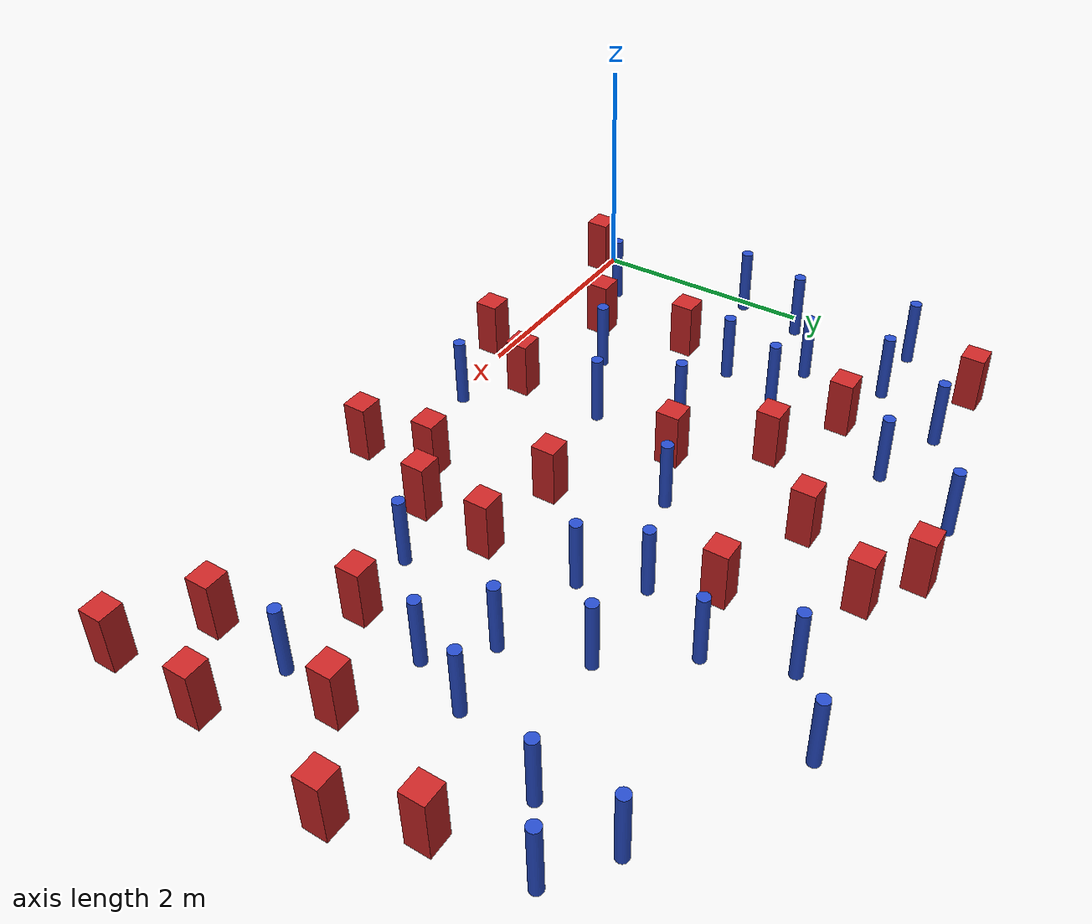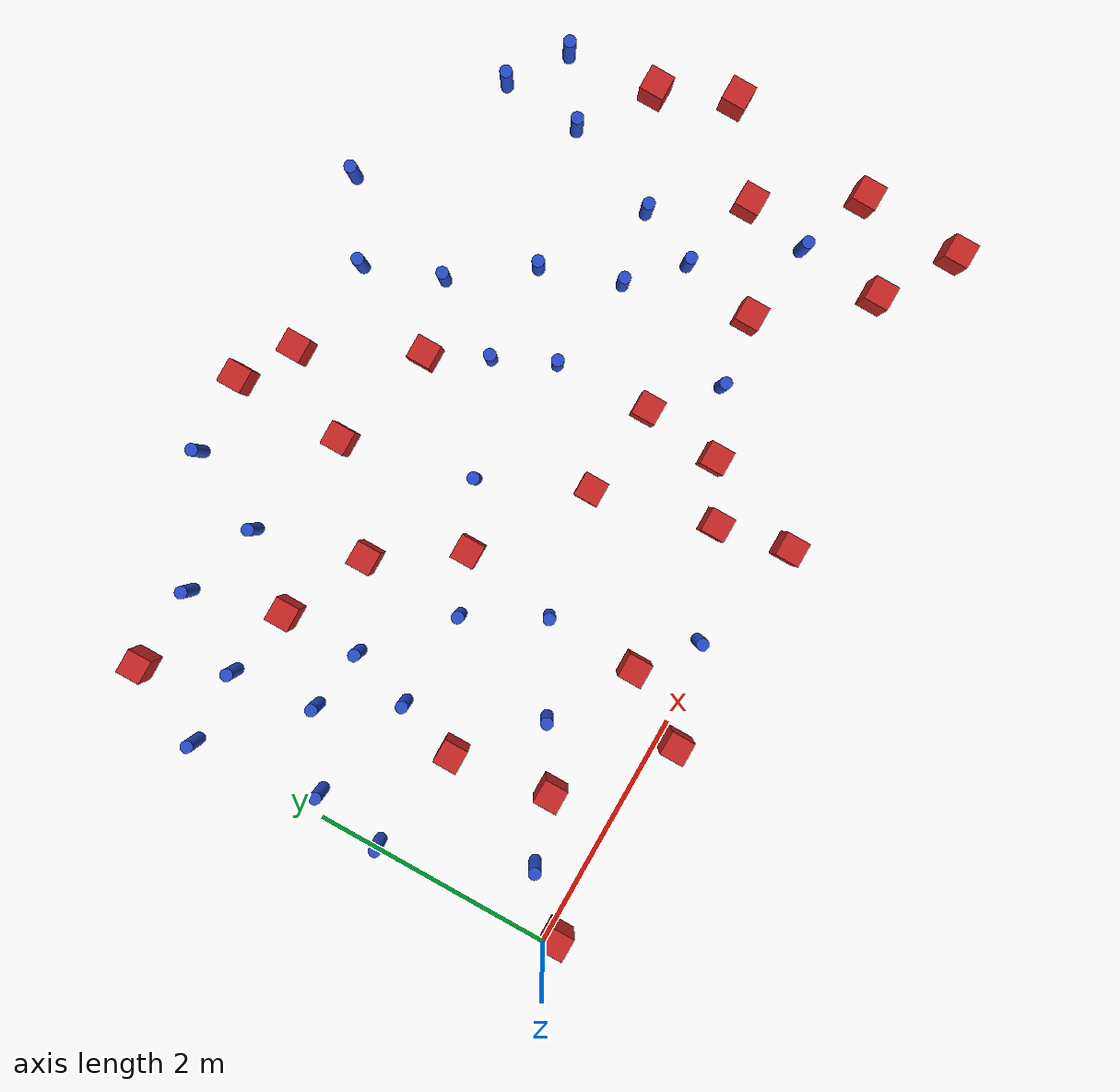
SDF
<sdf version="1.6">
 <model name="dense_35">
  <model name="pole_obstacle8">
   <static>true</static>
   <pose>5.74326832337 0.918242795768 -9.47619616065e-06 5.49618799737e-07 2.36310414061e-07 -1.550905348e-07</pose>
   <link name="link">
    <pose>0 0 0.3 0 -0 0</pose>
    <inertial>
     <mass>1</mass>
     <inertia><ixx>0.145833</ixx><ixy>0</ixy><ixz>0</ixz><iyy>0.145833</iyy><iyz>0</iyz><izz>0.125</izz></inertia>
    </inertial>
    <collision name="collision">
     <geometry><cylinder><radius>0.05</radius><length>.6</length></cylinder></geometry>
    </collision>
    <visual name="visual">
     <geometry><cylinder><radius>0.05</radius><length>.6</length></cylinder></geometry>
     <material>
      <script><name>Gazebo/Blue</name><uri>file://media/materials/scripts/gazebo.material</uri></script>
     </material>
    </visual>
   </link>
  </model>
  <model name="square_post_obstacle14">
   <static>true</static>
   <pose>0.976466315435 1.36126009317 -6.11067671241e-07 -5.50515727128e-06 -8.79689657224e-07 2.37013304536e-05</pose>
   <link name="link">
    <pose>0 0 0.25 0 -0 0</pose>
    <inertial>
     <mass>100</mass>
     <inertia>
      <ixx>0.166667</ixx>
      <ixy>0</ixy>
      <ixz>0</ixz>
      <iyy>0.166667</iyy>
      <iyz>0</iyz>
      <izz>0.166667</izz>
     </inertia>
    </inertial>
    <collision name="collision"><geometry><box><size>.2 .2 .5</size></box></geometry></collision>
    <visual name="visual">
     <geometry><box><size>.2 .2 .5</size></box></geometry>
     <material>
      <script><name>Gazebo/Red</name><uri>file://media/materials/scripts/gazebo.material</uri></script>
     </material>
    </visual>
   </link>
  </model>
  <model name="pole_obstacle13">
   <static>true</static>
   <pose>2.92305511422 2.25661610833 -9.47619616065e-06 5.49618799737e-07 2.36310414051e-07 -1.55090534807e-07</pose>
   <link name="link">
    <pose>0 0 0.3 0 -0 0</pose>
    <inertial>
     <mass>1</mass>
     <inertia><ixx>0.145833</ixx><ixy>0</ixy><ixz>0</ixz><iyy>0.145833</iyy><iyz>0</iyz><izz>0.125</izz></inertia>
    </inertial>
    <collision name="collision">
     <geometry><cylinder><radius>0.05</radius><length>.6</length></cylinder></geometry>
    </collision>
    <visual name="visual">
     <geometry><cylinder><radius>0.05</radius><length>.6</length></cylinder></geometry>
     <material>
      <script><name>Gazebo/Blue</name><uri>file://media/materials/scripts/gazebo.material</uri></script>
     </material>
    </visual>
   </link>
  </model>
  <model name="pole_obstacle15">
   <static>true</static>
   <pose>1.73410881993 3.55879253079 -9.47619616065e-06 5.49618799737e-07 2.36310414062e-07 -1.55090534798e-07</pose>
   <link name="link">
    <pose>0 0 0.3 0 -0 0</pose>
    <inertial>
     <mass>1</mass>
     <inertia><ixx>0.145833</ixx><ixy>0</ixy><ixz>0</ixz><iyy>0.145833</iyy><iyz>0</iyz><izz>0.125</izz></inertia>
    </inertial>
    <collision name="collision">
     <geometry><cylinder><radius>0.05</radius><length>.6</length></cylinder></geometry>
    </collision>
    <visual name="visual">
     <geometry><cylinder><radius>0.05</radius><length>.6</length></cylinder></geometry>
     <material>
      <script><name>Gazebo/Blue</name><uri>file://media/materials/scripts/gazebo.material</uri></script>
     </material>
    </visual>
   </link>
  </model>
  <model name="square_post_obstacle23">
   <static>true</static>
   <pose>3.53498907678 0.447461934969 -6.11067671241e-07 -5.50515727128e-06 -8.79689657224e-07 2.37013304536e-05</pose>
   <link name="link">
    <pose>0 0 0.25 0 -0 0</pose>
    <inertial>
     <mass>100</mass>
     <inertia>
      <ixx>0.166667</ixx>
      <ixy>0</ixy>
      <ixz>0</ixz>
      <iyy>0.166667</iyy>
      <iyz>0</iyz>
      <izz>0.166667</izz>
     </inertia>
    </inertial>
    <collision name="collision"><geometry><box><size>.2 .2 .5</size></box></geometry></collision>
    <visual name="visual">
     <geometry><box><size>.2 .2 .5</size></box></geometry>
     <material>
      <script><name>Gazebo/Red</name><uri>file://media/materials/scripts/gazebo.material</uri></script>
     </material>
    </visual>
   </link>
  </model>
  <model name="pole_obstacle44">
   <static>true</static>
   <pose>2.68041888834 0.111667263471 -9.4761961606e-06 5.49618799729e-07 2.36310414008e-07 -1.55090534821e-07</pose>
   <link name="link">
    <pose>0 0 0.3 0 -0 0</pose>
    <inertial>
     <mass>1</mass>
     <inertia><ixx>0.145833</ixx><ixy>0</ixy><ixz>0</ixz><iyy>0.145833</iyy><iyz>0</iyz><izz>0.125</izz></inertia>
    </inertial>
    <collision name="collision">
     <geometry><cylinder><radius>0.05</radius><length>.6</length></cylinder></geometry>
    </collision>
    <visual name="visual">
     <geometry><cylinder><radius>0.05</radius><length>.6</length></cylinder></geometry>
     <material>
      <script><name>Gazebo/Blue</name><uri>file://media/materials/scripts/gazebo.material</uri></script>
     </material>
    </visual>
   </link>
  </model>
  <model name="square_post_obstacle53">
   <static>true</static>
   <pose>5.07321738931 1.01666568384 -6.11067671241e-07 -5.50515727128e-06 -8.79689657224e-07 2.37013304536e-05</pose>
   <link name="link">
    <pose>0 0 0.25 0 -0 0</pose>
    <inertial>
     <mass>100</mass>
     <inertia>
      <ixx>0.166667</ixx>
      <ixy>0</ixy>
      <ixz>0</ixz>
      <iyy>0.166667</iyy>
      <iyz>0</iyz>
      <izz>0.166667</izz>
     </inertia>
    </inertial>
    <collision name="collision"><geometry><box><size>.2 .2 .5</size></box></geometry></collision>
    <visual name="visual">
     <geometry><box><size>.2 .2 .5</size></box></geometry>
     <material>
      <script><name>Gazebo/Red</name><uri>file://media/materials/scripts/gazebo.material</uri></script>
     </material>
    </visual>
   </link>
  </model>
  <model name="square_post_obstacle54">
   <static>true</static>
   <pose>3.57953814469 3.06855047184 -6.11067671241e-07 -5.50515727128e-06 -8.79689657224e-07 2.37013304536e-05</pose>
   <link name="link">
    <pose>0 0 0.25 0 -0 0</pose>
    <inertial>
     <mass>100</mass>
     <inertia>
      <ixx>0.166667</ixx>
      <ixy>0</ixy>
      <ixz>0</ixz>
      <iyy>0.166667</iyy>
      <iyz>0</iyz>
      <izz>0.166667</izz>
     </inertia>
    </inertial>
    <collision name="collision"><geometry><box><size>.2 .2 .5</size></box></geometry></collision>
    <visual name="visual">
     <geometry><box><size>.2 .2 .5</size></box></geometry>
     <material>
      <script><name>Gazebo/Red</name><uri>file://media/materials/scripts/gazebo.material</uri></script>
     </material>
    </visual>
   </link>
  </model>
  <model name="pole_obstacle52">
   <static>true</static>
   <pose>4.52747669376 4.24124237278 -9.47619616065e-06 5.49618799737e-07 2.36310414037e-07 -1.55090534814e-07</pose>
   <link name="link">
    <pose>0 0 0.3 0 -0 0</pose>
    <inertial>
     <mass>1</mass>
     <inertia><ixx>0.145833</ixx><ixy>0</ixy><ixz>0</ixz><iyy>0.145833</iyy><iyz>0</iyz><izz>0.125</izz></inertia>
    </inertial>
    <collision name="collision">
     <geometry><cylinder><radius>0.05</radius><length>.6</length></cylinder></geometry>
    </collision>
    <visual name="visual">
     <geometry><cylinder><radius>0.05</radius><length>.6</length></cylinder></geometry>
     <material>
      <script><name>Gazebo/Blue</name><uri>file://media/materials/scripts/gazebo.material</uri></script>
     </material>
    </visual>
   </link>
  </model>
  <model name="pole_obstacle54">
   <static>true</static>
   <pose>4.0205477465 2.13896941087 -9.47619616065e-06 5.49618799737e-07 2.36310414057e-07 -1.55090534802e-07</pose>
   <link name="link">
    <pose>0 0 0.3 0 -0 0</pose>
    <inertial>
     <mass>1</mass>
     <inertia><ixx>0.145833</ixx><ixy>0</ixy><ixz>0</ixz><iyy>0.145833</iyy><iyz>0</iyz><izz>0.125</izz></inertia>
    </inertial>
    <collision name="collision">
     <geometry><cylinder><radius>0.05</radius><length>.6</length></cylinder></geometry>
    </collision>
    <visual name="visual">
     <geometry><cylinder><radius>0.05</radius><length>.6</length></cylinder></geometry>
     <material>
      <script><name>Gazebo/Blue</name><uri>file://media/materials/scripts/gazebo.material</uri></script>
     </material>
    </visual>
   </link>
  </model>
  <model name="square_post_obstacle58">
   <static>true</static>
   <pose>6.28109671533 -0.143206653476 -6.11067671241e-07 -5.50515727128e-06 -8.79689657224e-07 2.37013304536e-05</pose>
   <link name="link">
    <pose>0 0 0.25 0 -0 0</pose>
    <inertial>
     <mass>100</mass>
     <inertia>
      <ixx>0.166667</ixx>
      <ixy>0</ixy>
      <ixz>0</ixz>
      <iyy>0.166667</iyy>
      <iyz>0</iyz>
      <izz>0.166667</izz>
     </inertia>
    </inertial>
    <collision name="collision"><geometry><box><size>.2 .2 .5</size></box></geometry></collision>
    <visual name="visual">
     <geometry><box><size>.2 .2 .5</size></box></geometry>
     <material>
      <script><name>Gazebo/Red</name><uri>file://media/materials/scripts/gazebo.material</uri></script>
     </material>
    </visual>
   </link>
  </model>
  <model name="square_post_obstacle64">
   <static>true</static>
   <pose>2.70336702878 4.24247116568 -6.11067671241e-07 -5.50515727128e-06 -8.79689657224e-07 2.37013304536e-05</pose>
   <link name="link">
    <pose>0 0 0.25 0 -0 0</pose>
    <inertial>
     <mass>100</mass>
     <inertia>
      <ixx>0.166667</ixx>
      <ixy>0</ixy>
      <ixz>0</ixz>
      <iyy>0.166667</iyy>
      <iyz>0</iyz>
      <izz>0.166667</izz>
     </inertia>
    </inertial>
    <collision name="collision"><geometry><box><size>.2 .2 .5</size></box></geometry></collision>
    <visual name="visual">
     <geometry><box><size>.2 .2 .5</size></box></geometry>
     <material>
      <script><name>Gazebo/Red</name><uri>file://media/materials/scripts/gazebo.material</uri></script>
     </material>
    </visual>
   </link>
  </model>
  <model name="square_post_obstacle65">
   <static>true</static>
   <pose>0.124840625181 -0.0577593966694 -6.11067671241e-07 -5.50515727128e-06 -8.79689657224e-07 2.37013304536e-05</pose>
   <link name="link">
    <pose>0 0 0.25 0 -0 0</pose>
    <inertial>
     <mass>100</mass>
     <inertia>
      <ixx>0.166667</ixx>
      <ixy>0</ixy>
      <ixz>0</ixz>
      <iyy>0.166667</iyy>
      <iyz>0</iyz>
      <izz>0.166667</izz>
     </inertia>
    </inertial>
    <collision name="collision"><geometry><box><size>.2 .2 .5</size></box></geometry></collision>
    <visual name="visual">
     <geometry><box><size>.2 .2 .5</size></box></geometry>
     <material>
      <script><name>Gazebo/Red</name><uri>file://media/materials/scripts/gazebo.material</uri></script>
     </material>
    </visual>
   </link>
  </model>
  <model name="pole_obstacle65">
   <static>true</static>
   <pose>1.57232430455 0.847805620028 -9.47619616065e-06 5.49618799737e-07 2.36310414065e-07 -1.55090534798e-07</pose>
   <link name="link">
    <pose>0 0 0.3 0 -0 0</pose>
    <inertial>
     <mass>1</mass>
     <inertia><ixx>0.145833</ixx><ixy>0</ixy><ixz>0</ixz><iyy>0.145833</iyy><iyz>0</iyz><izz>0.125</izz></inertia>
    </inertial>
    <collision name="collision">
     <geometry><cylinder><radius>0.05</radius><length>.6</length></cylinder></geometry>
    </collision>
    <visual name="visual">
     <geometry><cylinder><radius>0.05</radius><length>.6</length></cylinder></geometry>
     <material>
      <script><name>Gazebo/Blue</name><uri>file://media/materials/scripts/gazebo.material</uri></script>
     </material>
    </visual>
   </link>
  </model>
  <model name="pole_obstacle66">
   <static>true</static>
   <pose>5.73989693912 3.56513327835 -9.47619616065e-06 5.49618799738e-07 2.36310414051e-07 -1.55090534805e-07</pose>
   <link name="link">
    <pose>0 0 0.3 0 -0 0</pose>
    <inertial>
     <mass>1</mass>
     <inertia><ixx>0.145833</ixx><ixy>0</ixy><ixz>0</ixz><iyy>0.145833</iyy><iyz>0</iyz><izz>0.125</izz></inertia>
    </inertial>
    <collision name="collision">
     <geometry><cylinder><radius>0.05</radius><length>.6</length></cylinder></geometry>
    </collision>
    <visual name="visual">
     <geometry><cylinder><radius>0.05</radius><length>.6</length></cylinder></geometry>
     <material>
      <script><name>Gazebo/Blue</name><uri>file://media/materials/scripts/gazebo.material</uri></script>
     </material>
    </visual>
   </link>
  </model>
  <model name="pole_obstacle67">
   <static>true</static>
   <pose>0.531875124788 0.36643149608 -9.47619616065e-06 5.49618799737e-07 2.36310414066e-07 -1.55090534796e-07</pose>
   <link name="link">
    <pose>0 0 0.3 0 -0 0</pose>
    <inertial>
     <mass>1</mass>
     <inertia><ixx>0.145833</ixx><ixy>0</ixy><ixz>0</ixz><iyy>0.145833</iyy><iyz>0</iyz><izz>0.125</izz></inertia>
    </inertial>
    <collision name="collision">
     <geometry><cylinder><radius>0.05</radius><length>.6</length></cylinder></geometry>
    </collision>
    <visual name="visual">
     <geometry><cylinder><radius>0.05</radius><length>.6</length></cylinder></geometry>
     <material>
      <script><name>Gazebo/Blue</name><uri>file://media/materials/scripts/gazebo.material</uri></script>
     </material>
    </visual>
   </link>
  </model>
  <model name="square_post_obstacle71">
   <static>true</static>
   <pose>5.69920581331 0.231424018608 -6.11067671241e-07 -5.50515727128e-06 -8.79689657224e-07 2.37013304536e-05</pose>
   <link name="link">
    <pose>0 0 0.25 0 -0 0</pose>
    <inertial>
     <mass>100</mass>
     <inertia>
      <ixx>0.166667</ixx>
      <ixy>0</ixy>
      <ixz>0</ixz>
      <iyy>0.166667</iyy>
      <iyz>0</iyz>
      <izz>0.166667</izz>
     </inertia>
    </inertial>
    <collision name="collision"><geometry><box><size>.2 .2 .5</size></box></geometry></collision>
    <visual name="visual">
     <geometry><box><size>.2 .2 .5</size></box></geometry>
     <material>
      <script><name>Gazebo/Red</name><uri>file://media/materials/scripts/gazebo.material</uri></script>
     </material>
    </visual>
   </link>
  </model>
  <model name="pole_obstacle70">
   <static>true</static>
   <pose>1.94045755349 1.83668475796 -9.47619616065e-06 5.49618799737e-07 2.36310414065e-07 -1.55090534798e-07</pose>
   <link name="link">
    <pose>0 0 0.3 0 -0 0</pose>
    <inertial>
     <mass>1</mass>
     <inertia><ixx>0.145833</ixx><ixy>0</ixy><ixz>0</ixz><iyy>0.145833</iyy><iyz>0</iyz><izz>0.125</izz></inertia>
    </inertial>
    <collision name="collision">
     <geometry><cylinder><radius>0.05</radius><length>.6</length></cylinder></geometry>
    </collision>
    <visual name="visual">
     <geometry><cylinder><radius>0.05</radius><length>.6</length></cylinder></geometry>
     <material>
      <script><name>Gazebo/Blue</name><uri>file://media/materials/scripts/gazebo.material</uri></script>
     </material>
    </visual>
   </link>
  </model>
  <model name="pole_obstacle86">
   <static>true</static>
   <pose>0.207607833617 2.10428420467 -9.4761961606e-06 5.49618799729e-07 2.36310413995e-07 -1.55090534826e-07</pose>
   <link name="link">
    <pose>0 0 0.3 0 -0 0</pose>
    <inertial>
     <mass>1</mass>
     <inertia><ixx>0.145833</ixx><ixy>0</ixy><ixz>0</ixz><iyy>0.145833</iyy><iyz>0</iyz><izz>0.125</izz></inertia>
    </inertial>
    <collision name="collision">
     <geometry><cylinder><radius>0.05</radius><length>.6</length></cylinder></geometry>
    </collision>
    <visual name="visual">
     <geometry><cylinder><radius>0.05</radius><length>.6</length></cylinder></geometry>
     <material>
      <script><name>Gazebo/Blue</name><uri>file://media/materials/scripts/gazebo.material</uri></script>
     </material>
    </visual>
   </link>
  </model>
  <model name="pole_obstacle89">
   <static>true</static>
   <pose>4.60513788556 2.64079014528 -9.47619616065e-06 5.49618799738e-07 2.36310414051e-07 -1.55090534805e-07</pose>
   <link name="link">
    <pose>0 0 0.3 0 -0 0</pose>
    <inertial>
     <mass>1</mass>
     <inertia><ixx>0.145833</ixx><ixy>0</ixy><ixz>0</ixz><iyy>0.145833</iyy><iyz>0</iyz><izz>0.125</izz></inertia>
    </inertial>
    <collision name="collision">
     <geometry><cylinder><radius>0.05</radius><length>.6</length></cylinder></geometry>
    </collision>
    <visual name="visual">
     <geometry><cylinder><radius>0.05</radius><length>.6</length></cylinder></geometry>
     <material>
      <script><name>Gazebo/Blue</name><uri>file://media/materials/scripts/gazebo.material</uri></script>
     </material>
    </visual>
   </link>
  </model>
  <model name="square_post_obstacle84">
   <static>true</static>
   <pose>2.24794121247 0.450194221428 -6.11067671241e-07 -5.50515727128e-06 -8.79689657224e-07 2.37013304536e-05</pose>
   <link name="link">
    <pose>0 0 0.25 0 -0 0</pose>
    <inertial>
     <mass>100</mass>
     <inertia>
      <ixx>0.166667</ixx>
      <ixy>0</ixy>
      <ixz>0</ixz>
      <iyy>0.166667</iyy>
      <iyz>0</iyz>
      <izz>0.166667</izz>
     </inertia>
    </inertial>
    <collision name="collision"><geometry><box><size>.2 .2 .5</size></box></geometry></collision>
    <visual name="visual">
     <geometry><box><size>.2 .2 .5</size></box></geometry>
     <material>
      <script><name>Gazebo/Red</name><uri>file://media/materials/scripts/gazebo.material</uri></script>
     </material>
    </visual>
   </link>
  </model>
  <model name="pole_obstacle103">
   <static>true</static>
   <pose>0.0662306205233 3.14885479916 -9.4761961606e-06 5.49618799729e-07 2.36310413996e-07 -1.55090534826e-07</pose>
   <link name="link">
    <pose>0 0 0.3 0 -0 0</pose>
    <inertial>
     <mass>1</mass>
     <inertia><ixx>0.145833</ixx><ixy>0</ixy><ixz>0</ixz><iyy>0.145833</iyy><iyz>0</iyz><izz>0.125</izz></inertia>
    </inertial>
    <collision name="collision">
     <geometry><cylinder><radius>0.05</radius><length>.6</length></cylinder></geometry>
    </collision>
    <visual name="visual">
     <geometry><cylinder><radius>0.05</radius><length>.6</length></cylinder></geometry>
     <material>
      <script><name>Gazebo/Blue</name><uri>file://media/materials/scripts/gazebo.material</uri></script>
     </material>
    </visual>
   </link>
  </model>
  <model name="square_post_obstacle93">
   <static>true</static>
   <pose>1.29102938515 3.02417807815 -6.11067671241e-07 -5.50515727128e-06 -8.79689657224e-07 2.37013304536e-05</pose>
   <link name="link">
    <pose>0 0 0.25 0 -0 0</pose>
    <inertial>
     <mass>100</mass>
     <inertia>
      <ixx>0.166667</ixx>
      <ixy>0</ixy>
      <ixz>0</ixz>
      <iyy>0.166667</iyy>
      <iyz>0</iyz>
      <izz>0.166667</izz>
     </inertia>
    </inertial>
    <collision name="collision"><geometry><box><size>.2 .2 .5</size></box></geometry></collision>
    <visual name="visual">
     <geometry><box><size>.2 .2 .5</size></box></geometry>
     <material>
      <script><name>Gazebo/Red</name><uri>file://media/materials/scripts/gazebo.material</uri></script>
     </material>
    </visual>
   </link>
  </model>
  <model name="square_post_obstacle98">
   <static>true</static>
   <pose>2.40844850043 2.02243445875 -6.11067671241e-07 -5.50515727128e-06 -8.79689657224e-07 2.37013304536e-05</pose>
   <link name="link">
    <pose>0 0 0.25 0 -0 0</pose>
    <inertial>
     <mass>100</mass>
     <inertia>
      <ixx>0.166667</ixx>
      <ixy>0</ixy>
      <ixz>0</ixz>
      <iyy>0.166667</iyy>
      <iyz>0</iyz>
      <izz>0.166667</izz>
     </inertia>
    </inertial>
    <collision name="collision"><geometry><box><size>.2 .2 .5</size></box></geometry></collision>
    <visual name="visual">
     <geometry><box><size>.2 .2 .5</size></box></geometry>
     <material>
      <script><name>Gazebo/Red</name><uri>file://media/materials/scripts/gazebo.material</uri></script>
     </material>
    </visual>
   </link>
  </model>
  <model name="square_post_obstacle102">
   <static>true</static>
   <pose>6.4955229972 1.94023920971 -6.11067671241e-07 -5.50515727128e-06 -8.79689657224e-07 2.37013304536e-05</pose>
   <link name="link">
    <pose>0 0 0.25 0 -0 0</pose>
    <inertial>
     <mass>100</mass>
     <inertia>
      <ixx>0.166667</ixx>
      <ixy>0</ixy>
      <ixz>0</ixz>
      <iyy>0.166667</iyy>
      <iyz>0</iyz>
      <izz>0.166667</izz>
     </inertia>
    </inertial>
    <collision name="collision"><geometry><box><size>.2 .2 .5</size></box></geometry></collision>
    <visual name="visual">
     <geometry><box><size>.2 .2 .5</size></box></geometry>
     <material>
      <script><name>Gazebo/Red</name><uri>file://media/materials/scripts/gazebo.material</uri></script>
     </material>
    </visual>
   </link>
  </model>
  <model name="pole_obstacle116">
   <static>true</static>
   <pose>1.13665969465 1.87317020811 -9.47619616065e-06 5.49618799737e-07 2.36310414065e-07 -1.55090534798e-07</pose>
   <link name="link">
    <pose>0 0 0.3 0 -0 0</pose>
    <inertial>
     <mass>1</mass>
     <inertia><ixx>0.145833</ixx><ixy>0</ixy><ixz>0</ixz><iyy>0.145833</iyy><iyz>0</iyz><izz>0.125</izz></inertia>
    </inertial>
    <collision name="collision">
     <geometry><cylinder><radius>0.05</radius><length>.6</length></cylinder></geometry>
    </collision>
    <visual name="visual">
     <geometry><cylinder><radius>0.05</radius><length>.6</length></cylinder></geometry>
     <material>
      <script><name>Gazebo/Blue</name><uri>file://media/materials/scripts/gazebo.material</uri></script>
     </material>
    </visual>
   </link>
  </model>
  <model name="square_post_obstacle103">
   <static>true</static>
   <pose>3.12786077831 3.96272092216 -6.11067671241e-07 -5.50515727128e-06 -8.79689657224e-07 2.37013304536e-05</pose>
   <link name="link">
    <pose>0 0 0.25 0 -0 0</pose>
    <inertial>
     <mass>100</mass>
     <inertia>
      <ixx>0.166667</ixx>
      <ixy>0</ixy>
      <ixz>0</ixz>
      <iyy>0.166667</iyy>
      <iyz>0</iyz>
      <izz>0.166667</izz>
     </inertia>
    </inertial>
    <collision name="collision"><geometry><box><size>.2 .2 .5</size></box></geometry></collision>
    <visual name="visual">
     <geometry><box><size>.2 .2 .5</size></box></geometry>
     <material>
      <script><name>Gazebo/Red</name><uri>file://media/materials/scripts/gazebo.material</uri></script>
     </material>
    </visual>
   </link>
  </model>
  <model name="pole_obstacle125">
   <static>true</static>
   <pose>0.776002667412 2.46084765203 -9.47619616065e-06 5.49618799737e-07 2.36310414066e-07 -1.55090534797e-07</pose>
   <link name="link">
    <pose>0 0 0.3 0 -0 0</pose>
    <inertial>
     <mass>1</mass>
     <inertia><ixx>0.145833</ixx><ixy>0</ixy><ixz>0</ixz><iyy>0.145833</iyy><iyz>0</iyz><izz>0.125</izz></inertia>
    </inertial>
    <collision name="collision">
     <geometry><cylinder><radius>0.05</radius><length>.6</length></cylinder></geometry>
    </collision>
    <visual name="visual">
     <geometry><cylinder><radius>0.05</radius><length>.6</length></cylinder></geometry>
     <material>
      <script><name>Gazebo/Blue</name><uri>file://media/materials/scripts/gazebo.material</uri></script>
     </material>
    </visual>
   </link>
  </model>
  <model name="pole_obstacle126">
   <static>true</static>
   <pose>3.94105519589 3.8473493145 -9.47619616065e-06 5.49618799737e-07 2.36310414051e-07 -1.55090534807e-07</pose>
   <link name="link">
    <pose>0 0 0.3 0 -0 0</pose>
    <inertial>
     <mass>1</mass>
     <inertia><ixx>0.145833</ixx><ixy>0</ixy><ixz>0</ixz><iyy>0.145833</iyy><iyz>0</iyz><izz>0.125</izz></inertia>
    </inertial>
    <collision name="collision">
     <geometry><cylinder><radius>0.05</radius><length>.6</length></cylinder></geometry>
    </collision>
    <visual name="visual">
     <geometry><cylinder><radius>0.05</radius><length>.6</length></cylinder></geometry>
     <material>
      <script><name>Gazebo/Blue</name><uri>file://media/materials/scripts/gazebo.material</uri></script>
     </material>
    </visual>
   </link>
  </model>
  <model name="pole_obstacle128">
   <static>true</static>
   <pose>4.81936742997 2.00469982125 -9.47619616065e-06 5.49618799737e-07 2.36310414065e-07 -1.55090534797e-07</pose>
   <link name="link">
    <pose>0 0 0.3 0 -0 0</pose>
    <inertial>
     <mass>1</mass>
     <inertia><ixx>0.145833</ixx><ixy>0</ixy><ixz>0</ixz><iyy>0.145833</iyy><iyz>0</iyz><izz>0.125</izz></inertia>
    </inertial>
    <collision name="collision">
     <geometry><cylinder><radius>0.05</radius><length>.6</length></cylinder></geometry>
    </collision>
    <visual name="visual">
     <geometry><cylinder><radius>0.05</radius><length>.6</length></cylinder></geometry>
     <material>
      <script><name>Gazebo/Blue</name><uri>file://media/materials/scripts/gazebo.material</uri></script>
     </material>
    </visual>
   </link>
  </model>
  <model name="pole_obstacle129">
   <static>true</static>
   <pose>0.0822855506719 1.51178848993 -9.47619616065e-06 5.49618799737e-07 2.36310414057e-07 -1.55090534803e-07</pose>
   <link name="link">
    <pose>0 0 0.3 0 -0 0</pose>
    <inertial>
     <mass>1</mass>
     <inertia><ixx>0.145833</ixx><ixy>0</ixy><ixz>0</ixz><iyy>0.145833</iyy><iyz>0</iyz><izz>0.125</izz></inertia>
    </inertial>
    <collision name="collision">
     <geometry><cylinder><radius>0.05</radius><length>.6</length></cylinder></geometry>
    </collision>
    <visual name="visual">
     <geometry><cylinder><radius>0.05</radius><length>.6</length></cylinder></geometry>
     <material>
      <script><name>Gazebo/Blue</name><uri>file://media/materials/scripts/gazebo.material</uri></script>
     </material>
    </visual>
   </link>
  </model>
  <model name="square_post_obstacle114">
   <static>true</static>
   <pose>2.67754129064 3.31751709524 -6.11067671241e-07 -5.50515727128e-06 -8.79689657224e-07 2.37013304536e-05</pose>
   <link name="link">
    <pose>0 0 0.25 0 -0 0</pose>
    <inertial>
     <mass>100</mass>
     <inertia>
      <ixx>0.166667</ixx>
      <ixy>0</ixy>
      <ixz>0</ixz>
      <iyy>0.166667</iyy>
      <iyz>0</iyz>
      <izz>0.166667</izz>
     </inertia>
    </inertial>
    <collision name="collision"><geometry><box><size>.2 .2 .5</size></box></geometry></collision>
    <visual name="visual">
     <geometry><box><size>.2 .2 .5</size></box></geometry>
     <material>
      <script><name>Gazebo/Red</name><uri>file://media/materials/scripts/gazebo.material</uri></script>
     </material>
    </visual>
   </link>
  </model>
  <model name="pole_obstacle135">
   <static>true</static>
   <pose>5.69951770135 2.91558499897 -9.47619616065e-06 5.49618799738e-07 2.36310414051e-07 -1.55090534805e-07</pose>
   <link name="link">
    <pose>0 0 0.3 0 -0 0</pose>
    <inertial>
     <mass>1</mass>
     <inertia><ixx>0.145833</ixx><ixy>0</ixy><ixz>0</ixz><iyy>0.145833</iyy><iyz>0</iyz><izz>0.125</izz></inertia>
    </inertial>
    <collision name="collision">
     <geometry><cylinder><radius>0.05</radius><length>.6</length></cylinder></geometry>
    </collision>
    <visual name="visual">
     <geometry><cylinder><radius>0.05</radius><length>.6</length></cylinder></geometry>
     <material>
      <script><name>Gazebo/Blue</name><uri>file://media/materials/scripts/gazebo.material</uri></script>
     </material>
    </visual>
   </link>
  </model>
  <model name="pole_obstacle138">
   <static>true</static>
   <pose>3.80311414505 2.61045122616 -9.47619616065e-06 5.49618799737e-07 2.36310414051e-07 -1.55090534807e-07</pose>
   <link name="link">
    <pose>0 0 0.3 0 -0 0</pose>
    <inertial>
     <mass>1</mass>
     <inertia><ixx>0.145833</ixx><ixy>0</ixy><ixz>0</ixz><iyy>0.145833</iyy><iyz>0</iyz><izz>0.125</izz></inertia>
    </inertial>
    <collision name="collision">
     <geometry><cylinder><radius>0.05</radius><length>.6</length></cylinder></geometry>
    </collision>
    <visual name="visual">
     <geometry><cylinder><radius>0.05</radius><length>.6</length></cylinder></geometry>
     <material>
      <script><name>Gazebo/Blue</name><uri>file://media/materials/scripts/gazebo.material</uri></script>
     </material>
    </visual>
   </link>
  </model>
  <model name="square_post_obstacle120">
   <static>true</static>
   <pose>1.97222718251 2.69296989959 -6.11067671241e-07 -5.50515727128e-06 -8.79689657224e-07 2.37013304536e-05</pose>
   <link name="link">
    <pose>0 0 0.25 0 -0 0</pose>
    <inertial>
     <mass>100</mass>
     <inertia>
      <ixx>0.166667</ixx>
      <ixy>0</ixy>
      <ixz>0</ixz>
      <iyy>0.166667</iyy>
      <iyz>0</iyz>
      <izz>0.166667</izz>
     </inertia>
    </inertial>
    <collision name="collision"><geometry><box><size>.2 .2 .5</size></box></geometry></collision>
    <visual name="visual">
     <geometry><box><size>.2 .2 .5</size></box></geometry>
     <material>
      <script><name>Gazebo/Red</name><uri>file://media/materials/scripts/gazebo.material</uri></script>
     </material>
    </visual>
   </link>
  </model>
  <model name="square_post_obstacle136">
   <static>true</static>
   <pose>6.25403904061 2.5259160619 -6.11067671241e-07 -5.50515727128e-06 -8.79689657224e-07 2.37013304536e-05</pose>
   <link name="link">
    <pose>0 0 0.25 0 -0 0</pose>
    <inertial>
     <mass>100</mass>
     <inertia>
      <ixx>0.166667</ixx>
      <ixy>0</ixy>
      <ixz>0</ixz>
      <iyy>0.166667</iyy>
      <iyz>0</iyz>
      <izz>0.166667</izz>
     </inertia>
    </inertial>
    <collision name="collision"><geometry><box><size>.2 .2 .5</size></box></geometry></collision>
    <visual name="visual">
     <geometry><box><size>.2 .2 .5</size></box></geometry>
     <material>
      <script><name>Gazebo/Red</name><uri>file://media/materials/scripts/gazebo.material</uri></script>
     </material>
    </visual>
   </link>
  </model>
  <model name="square_post_obstacle147">
   <static>true</static>
   <pose>3.97800154921 0.704740509099 -6.11067671241e-07 -5.50515727128e-06 -8.79689657224e-07 2.37013304536e-05</pose>
   <link name="link">
    <pose>0 0 0.25 0 -0 0</pose>
    <inertial>
     <mass>100</mass>
     <inertia>
      <ixx>0.166667</ixx>
      <ixy>0</ixy>
      <ixz>0</ixz>
      <iyy>0.166667</iyy>
      <iyz>0</iyz>
      <izz>0.166667</izz>
     </inertia>
    </inertial>
    <collision name="collision"><geometry><box><size>.2 .2 .5</size></box></geometry></collision>
    <visual name="visual">
     <geometry><box><size>.2 .2 .5</size></box></geometry>
     <material>
      <script><name>Gazebo/Red</name><uri>file://media/materials/scripts/gazebo.material</uri></script>
     </material>
    </visual>
   </link>
  </model>
  <model name="square_post_obstacle148">
   <static>true</static>
   <pose>6.3202442248 0.690347696628 -6.11067671241e-07 -5.50515727128e-06 -8.79689657224e-07 2.37013304536e-05</pose>
   <link name="link">
    <pose>0 0 0.25 0 -0 0</pose>
    <inertial>
     <mass>100</mass>
     <inertia>
      <ixx>0.166667</ixx>
      <ixy>0</ixy>
      <ixz>0</ixz>
      <iyy>0.166667</iyy>
      <iyz>0</iyz>
      <izz>0.166667</izz>
     </inertia>
    </inertial>
    <collision name="collision"><geometry><box><size>.2 .2 .5</size></box></geometry></collision>
    <visual name="visual">
     <geometry><box><size>.2 .2 .5</size></box></geometry>
     <material>
      <script><name>Gazebo/Red</name><uri>file://media/materials/scripts/gazebo.material</uri></script>
     </material>
    </visual>
   </link>
  </model>
  <model name="square_post_obstacle150">
   <static>true</static>
   <pose>4.05619263658 1.35322422375 -6.11067671241e-07 -5.50515727128e-06 -8.79689657224e-07 2.37013304536e-05</pose>
   <link name="link">
    <pose>0 0 0.25 0 -0 0</pose>
    <inertial>
     <mass>100</mass>
     <inertia>
      <ixx>0.166667</ixx>
      <ixy>0</ixy>
      <ixz>0</ixz>
      <iyy>0.166667</iyy>
      <iyz>0</iyz>
      <izz>0.166667</izz>
     </inertia>
    </inertial>
    <collision name="collision"><geometry><box><size>.2 .2 .5</size></box></geometry></collision>
    <visual name="visual">
     <geometry><box><size>.2 .2 .5</size></box></geometry>
     <material>
      <script><name>Gazebo/Red</name><uri>file://media/materials/scripts/gazebo.material</uri></script>
     </material>
    </visual>
   </link>
  </model>
  <model name="pole_obstacle165">
   <static>true</static>
   <pose>2.27276912533 1.22329385248 -9.47619616065e-06 5.49618799737e-07 2.36310414072e-07 -1.55090534793e-07</pose>
   <link name="link">
    <pose>0 0 0.3 0 -0 0</pose>
    <inertial>
     <mass>1</mass>
     <inertia><ixx>0.145833</ixx><ixy>0</ixy><ixz>0</ixz><iyy>0.145833</iyy><iyz>0</iyz><izz>0.125</izz></inertia>
    </inertial>
    <collision name="collision">
     <geometry><cylinder><radius>0.05</radius><length>.6</length></cylinder></geometry>
    </collision>
    <visual name="visual">
     <geometry><cylinder><radius>0.05</radius><length>.6</length></cylinder></geometry>
     <material>
      <script><name>Gazebo/Blue</name><uri>file://media/materials/scripts/gazebo.material</uri></script>
     </material>
    </visual>
   </link>
  </model>
  <model name="square_post_obstacle158">
   <static>true</static>
   <pose>0.381604929719 3.81558001968 -6.11067671241e-07 -5.50515727128e-06 -8.79689657224e-07 2.37013304536e-05</pose>
   <link name="link">
    <pose>0 0 0.25 0 -0 0</pose>
    <inertial>
     <mass>100</mass>
     <inertia>
      <ixx>0.166667</ixx>
      <ixy>0</ixy>
      <ixz>0</ixz>
      <iyy>0.166667</iyy>
      <iyz>0</iyz>
      <izz>0.166667</izz>
     </inertia>
    </inertial>
    <collision name="collision"><geometry><box><size>.2 .2 .5</size></box></geometry></collision>
    <visual name="visual">
     <geometry><box><size>.2 .2 .5</size></box></geometry>
     <material>
      <script><name>Gazebo/Red</name><uri>file://media/materials/scripts/gazebo.material</uri></script>
     </material>
    </visual>
   </link>
  </model>
  <model name="pole_obstacle168">
   <static>true</static>
   <pose>5.40024340312 2.12261932179 -9.47619616065e-06 5.49618799738e-07 2.36310414051e-07 -1.55090534805e-07</pose>
   <link name="link">
    <pose>0 0 0.3 0 -0 0</pose>
    <inertial>
     <mass>1</mass>
     <inertia><ixx>0.145833</ixx><ixy>0</ixy><ixz>0</ixz><iyy>0.145833</iyy><iyz>0</iyz><izz>0.125</izz></inertia>
    </inertial>
    <collision name="collision">
     <geometry><cylinder><radius>0.05</radius><length>.6</length></cylinder></geometry>
    </collision>
    <visual name="visual">
     <geometry><cylinder><radius>0.05</radius><length>.6</length></cylinder></geometry>
     <material>
      <script><name>Gazebo/Blue</name><uri>file://media/materials/scripts/gazebo.material</uri></script>
     </material>
    </visual>
   </link>
  </model>
  <model name="pole_obstacle177">
   <static>true</static>
   <pose>1.3002458474 2.38286876959 -9.47619616065e-06 5.49618799737e-07 2.36310414062e-07 -1.55090534798e-07</pose>
   <link name="link">
    <pose>0 0 0.3 0 -0 0</pose>
    <inertial>
     <mass>1</mass>
     <inertia><ixx>0.145833</ixx><ixy>0</ixy><ixz>0</ixz><iyy>0.145833</iyy><iyz>0</iyz><izz>0.125</izz></inertia>
    </inertial>
    <collision name="collision">
     <geometry><cylinder><radius>0.05</radius><length>.6</length></cylinder></geometry>
    </collision>
    <visual name="visual">
     <geometry><cylinder><radius>0.05</radius><length>.6</length></cylinder></geometry>
     <material>
      <script><name>Gazebo/Blue</name><uri>file://media/materials/scripts/gazebo.material</uri></script>
     </material>
    </visual>
   </link>
  </model>
  <model name="square_post_obstacle168">
   <static>true</static>
   <pose>3.29392305216 1.42887726743 -6.11067671241e-07 -5.50515727128e-06 -8.79689657224e-07 2.37013304536e-05</pose>
   <link name="link">
    <pose>0 0 0.25 0 -0 0</pose>
    <inertial>
     <mass>100</mass>
     <inertia>
      <ixx>0.166667</ixx>
      <ixy>0</ixy>
      <ixz>0</ixz>
      <iyy>0.166667</iyy>
      <iyz>0</iyz>
      <izz>0.166667</izz>
     </inertia>
    </inertial>
    <collision name="collision"><geometry><box><size>.2 .2 .5</size></box></geometry></collision>
    <visual name="visual">
     <geometry><box><size>.2 .2 .5</size></box></geometry>
     <material>
      <script><name>Gazebo/Red</name><uri>file://media/materials/scripts/gazebo.material</uri></script>
     </material>
    </visual>
   </link>
  </model>
  <model name="pole_obstacle186">
   <static>true</static>
   <pose>1.06718408021 3.76642492198 -9.47619616065e-06 5.49618799737e-07 2.36310414062e-07 -1.55090534798e-07</pose>
   <link name="link">
    <pose>0 0 0.3 0 -0 0</pose>
    <inertial>
     <mass>1</mass>
     <inertia><ixx>0.145833</ixx><ixy>0</ixy><ixz>0</ixz><iyy>0.145833</iyy><iyz>0</iyz><izz>0.125</izz></inertia>
    </inertial>
    <collision name="collision">
     <geometry><cylinder><radius>0.05</radius><length>.6</length></cylinder></geometry>
    </collision>
    <visual name="visual">
     <geometry><cylinder><radius>0.05</radius><length>.6</length></cylinder></geometry>
     <material>
      <script><name>Gazebo/Blue</name><uri>file://media/materials/scripts/gazebo.material</uri></script>
     </material>
    </visual>
   </link>
  </model>
  <model name="pole_obstacle187">
   <static>true</static>
   <pose>5.20012495346 1.63727294255 -9.47619616065e-06 5.49618799738e-07 2.36310414071e-07 -1.55090534796e-07</pose>
   <link name="link">
    <pose>0 0 0.3 0 -0 0</pose>
    <inertial>
     <mass>1</mass>
     <inertia><ixx>0.145833</ixx><ixy>0</ixy><ixz>0</ixz><iyy>0.145833</iyy><iyz>0</iyz><izz>0.125</izz></inertia>
    </inertial>
    <collision name="collision">
     <geometry><cylinder><radius>0.05</radius><length>.6</length></cylinder></geometry>
    </collision>
    <visual name="visual">
     <geometry><cylinder><radius>0.05</radius><length>.6</length></cylinder></geometry>
     <material>
      <script><name>Gazebo/Blue</name><uri>file://media/materials/scripts/gazebo.material</uri></script>
     </material>
    </visual>
   </link>
  </model>
  <model name="square_post_obstacle182">
   <static>true</static>
   <pose>1.88712214082 -0.126077316316 -6.11067671241e-07 -5.50515727128e-06 -8.79689657224e-07 2.37013304536e-05</pose>
   <link name="link">
    <pose>0 0 0.25 0 -0 0</pose>
    <inertial>
     <mass>100</mass>
     <inertia>
      <ixx>0.166667</ixx>
      <ixy>0</ixy>
      <ixz>0</ixz>
      <iyy>0.166667</iyy>
      <iyz>0</iyz>
      <izz>0.166667</izz>
     </inertia>
    </inertial>
    <collision name="collision"><geometry><box><size>.2 .2 .5</size></box></geometry></collision>
    <visual name="visual">
     <geometry><box><size>.2 .2 .5</size></box></geometry>
     <material>
      <script><name>Gazebo/Red</name><uri>file://media/materials/scripts/gazebo.material</uri></script>
     </material>
    </visual>
   </link>
  </model>
  <model name="square_post_obstacle192">
   <static>true</static>
   <pose>1.08626203653 0.540386164696 -6.11067671241e-07 -5.50515727128e-06 -8.79689657224e-07 2.37013304536e-05</pose>
   <link name="link">
    <pose>0 0 0.25 0 -0 0</pose>
    <inertial>
     <mass>100</mass>
     <inertia>
      <ixx>0.166667</ixx>
      <ixy>0</ixy>
      <ixz>0</ixz>
      <iyy>0.166667</iyy>
      <iyz>0</iyz>
      <izz>0.166667</izz>
     </inertia>
    </inertial>
    <collision name="collision"><geometry><box><size>.2 .2 .5</size></box></geometry></collision>
    <visual name="visual">
     <geometry><box><size>.2 .2 .5</size></box></geometry>
     <material>
      <script><name>Gazebo/Red</name><uri>file://media/materials/scripts/gazebo.material</uri></script>
     </material>
    </visual>
   </link>
  </model>
  <model name="square_post_obstacle198">
   <static>true</static>
   <pose>3.65274312867 -0.141314486023 -6.11067671241e-07 -5.50515727128e-06 -8.79689657224e-07 2.37013304536e-05</pose>
   <link name="link">
    <pose>0 0 0.25 0 -0 0</pose>
    <inertial>
     <mass>100</mass>
     <inertia>
      <ixx>0.166667</ixx>
      <ixy>0</ixy>
      <ixz>0</ixz>
      <iyy>0.166667</iyy>
      <iyz>0</iyz>
      <izz>0.166667</izz>
     </inertia>
    </inertial>
    <collision name="collision"><geometry><box><size>.2 .2 .5</size></box></geometry></collision>
    <visual name="visual">
     <geometry><box><size>.2 .2 .5</size></box></geometry>
     <material>
      <script><name>Gazebo/Red</name><uri>file://media/materials/scripts/gazebo.material</uri></script>
     </material>
    </visual>
   </link>
  </model>
  <model name="square_post_obstacle201">
   <static>true</static>
   <pose>5.84264917918 1.45301400065 -6.11067671241e-07 -5.50515727128e-06 -8.79689657224e-07 2.37013304536e-05</pose>
   <link name="link">
    <pose>0 0 0.25 0 -0 0</pose>
    <inertial>
     <mass>100</mass>
     <inertia>
      <ixx>0.166667</ixx>
      <ixy>0</ixy>
      <ixz>0</ixz>
      <iyy>0.166667</iyy>
      <iyz>0</iyz>
      <izz>0.166667</izz>
     </inertia>
    </inertial>
    <collision name="collision"><geometry><box><size>.2 .2 .5</size></box></geometry></collision>
    <visual name="visual">
     <geometry><box><size>.2 .2 .5</size></box></geometry>
     <material>
      <script><name>Gazebo/Red</name><uri>file://media/materials/scripts/gazebo.material</uri></script>
     </material>
    </visual>
   </link>
  </model>
  <model name="pole_obstacle198">
   <static>true</static>
   <pose>6.17905247559 3.25449383906 -9.47619616065e-06 5.49618799738e-07 2.36310414051e-07 -1.55090534805e-07</pose>
   <link name="link">
    <pose>0 0 0.3 0 -0 0</pose>
    <inertial>
     <mass>1</mass>
     <inertia><ixx>0.145833</ixx><ixy>0</ixy><ixz>0</ixz><iyy>0.145833</iyy><iyz>0</iyz><izz>0.125</izz></inertia>
    </inertial>
    <collision name="collision">
     <geometry><cylinder><radius>0.05</radius><length>.6</length></cylinder></geometry>
    </collision>
    <visual name="visual">
     <geometry><cylinder><radius>0.05</radius><length>.6</length></cylinder></geometry>
     <material>
      <script><name>Gazebo/Blue</name><uri>file://media/materials/scripts/gazebo.material</uri></script>
     </material>
    </visual>
   </link>
  </model>
  <model name="pole_obstacle208">
   <static>true</static>
   <pose>0.691370719465 3.15539341288 -9.47619616065e-06 5.49618799737e-07 2.36310414066e-07 -1.55090534797e-07</pose>
   <link name="link">
    <pose>0 0 0.3 0 -0 0</pose>
    <inertial>
     <mass>1</mass>
     <inertia><ixx>0.145833</ixx><ixy>0</ixy><ixz>0</ixz><iyy>0.145833</iyy><iyz>0</iyz><izz>0.125</izz></inertia>
    </inertial>
    <collision name="collision">
     <geometry><cylinder><radius>0.05</radius><length>.6</length></cylinder></geometry>
    </collision>
    <visual name="visual">
     <geometry><cylinder><radius>0.05</radius><length>.6</length></cylinder></geometry>
     <material>
      <script><name>Gazebo/Blue</name><uri>file://media/materials/scripts/gazebo.material</uri></script>
     </material>
    </visual>
   </link>
  </model>
  <model name="pole_obstacle216">
   <static>true</static>
   <pose>2.05301385025 4.23247736398 -9.47619616065e-06 5.49618799738e-07 2.3631041406e-07 -1.55090534801e-07</pose>
   <link name="link">
    <pose>0 0 0.3 0 -0 0</pose>
    <inertial>
     <mass>1</mass>
     <inertia><ixx>0.145833</ixx><ixy>0</ixy><ixz>0</ixz><iyy>0.145833</iyy><iyz>0</iyz><izz>0.125</izz></inertia>
    </inertial>
    <collision name="collision">
     <geometry><cylinder><radius>0.05</radius><length>.6</length></cylinder></geometry>
    </collision>
    <visual name="visual">
     <geometry><cylinder><radius>0.05</radius><length>.6</length></cylinder></geometry>
     <material>
      <script><name>Gazebo/Blue</name><uri>file://media/materials/scripts/gazebo.material</uri></script>
     </material>
    </visual>
   </link>
  </model>
  <model name="pole_obstacle217">
   <static>true</static>
   <pose>4.16678930035 3.23237478074 -9.47619616065e-06 5.49618799738e-07 2.36310414051e-07 -1.55090534805e-07</pose>
   <link name="link">
    <pose>0 0 0.3 0 -0 0</pose>
    <inertial>
     <mass>1</mass>
     <inertia><ixx>0.145833</ixx><ixy>0</ixy><ixz>0</ixz><iyy>0.145833</iyy><iyz>0</iyz><izz>0.125</izz></inertia>
    </inertial>
    <collision name="collision">
     <geometry><cylinder><radius>0.05</radius><length>.6</length></cylinder></geometry>
    </collision>
    <visual name="visual">
     <geometry><cylinder><radius>0.05</radius><length>.6</length></cylinder></geometry>
     <material>
      <script><name>Gazebo/Blue</name><uri>file://media/materials/scripts/gazebo.material</uri></script>
     </material>
    </visual>
   </link>
  </model>
  <model name="pole_obstacle228">
   <static>true</static>
   <pose>4.49937000939 0.93618602078 -9.47619616065e-06 5.49618799737e-07 2.36310414061e-07 -1.550905348e-07</pose>
   <link name="link">
    <pose>0 0 0.3 0 -0 0</pose>
    <inertial>
     <mass>1</mass>
     <inertia><ixx>0.145833</ixx><ixy>0</ixy><ixz>0</ixz><iyy>0.145833</iyy><iyz>0</iyz><izz>0.125</izz></inertia>
    </inertial>
    <collision name="collision">
     <geometry><cylinder><radius>0.05</radius><length>.6</length></cylinder></geometry>
    </collision>
    <visual name="visual">
     <geometry><cylinder><radius>0.05</radius><length>.6</length></cylinder></geometry>
     <material>
      <script><name>Gazebo/Blue</name><uri>file://media/materials/scripts/gazebo.material</uri></script>
     </material>
    </visual>
   </link>
  </model>
 </model>
</sdf>
